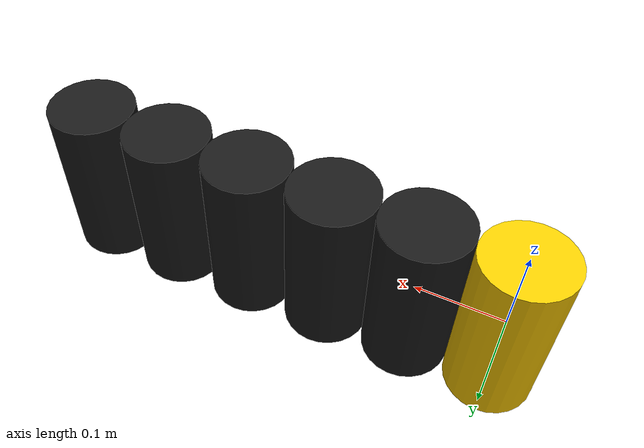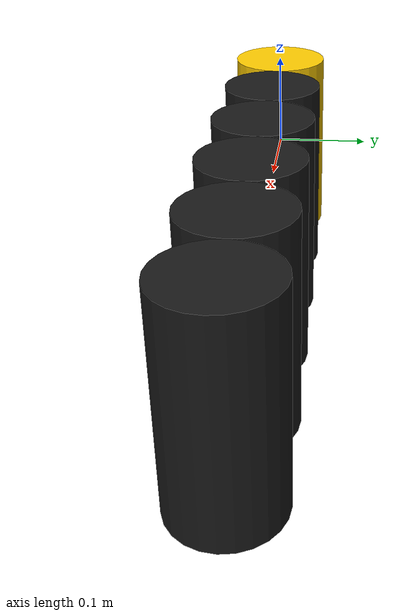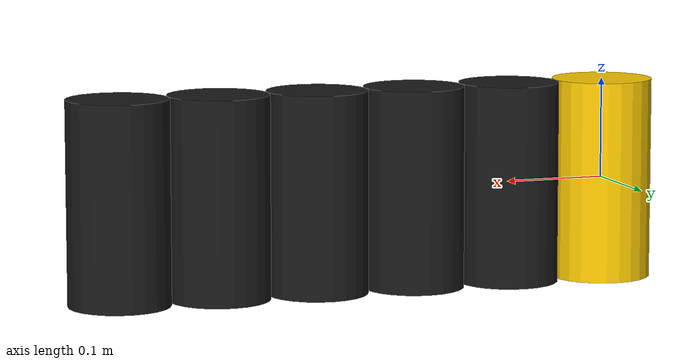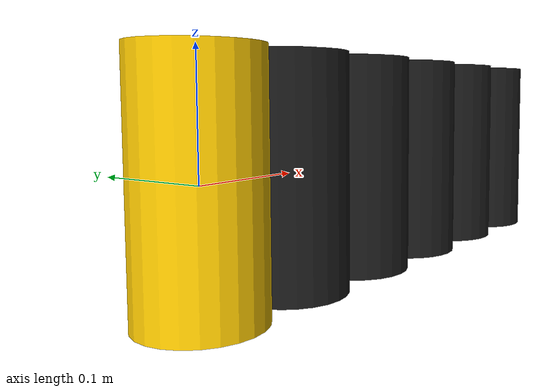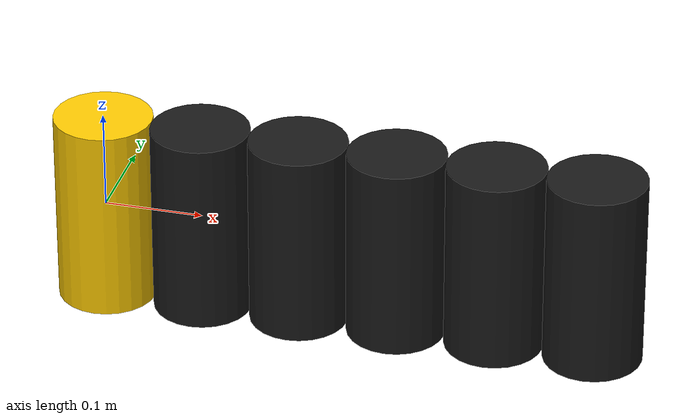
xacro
<?xml version="1.0"?>
<robot name="snakebot" xmlns:xacro="http://www.ros.org/wiki/xacro">

  <!-- Constants -->
  <xacro:property name="SEGMENT_LENGTH" value="0.2" />
  <xacro:property name="SEGMENT_RADIUS" value="0.05" />
  <xacro:property name="NUM_SEGMENTS" value="5" />

  <!-- Macro for creating a segment and connecting it to the previous link -->
  <xacro:macro name="snake_segment" params="name parent_link">
    <link name="${name}_link">
      <inertial>
        <mass value="0.5"/>
        <origin xyz="0 0 0" rpy="0 0 0"/>
        <inertia ixx="0.001" ixy="0.0" ixz="0.0" iyy="0.001" iyz="0.0" izz="0.001"/>
      </inertial>
      <visual>
        <geometry>
          <cylinder length="${SEGMENT_LENGTH}" radius="${SEGMENT_RADIUS}"/>
        </geometry>
        <material name="black">
          <color rgba="0.1 0.1 0.1 1.0"/>
        </material>
      </visual>
      <collision>
        <geometry>
          <cylinder length="${SEGMENT_LENGTH}" radius="${SEGMENT_RADIUS}"/>
        </geometry>
      </collision>
    </link>

    <!-- Joint connecting to the parent link (allows rotation around Y and Z axis) -->
    <joint name="${name}_joint" type="revolute">
      <parent link="${parent_link}"/>
      <child link="${name}_link"/>
      <origin xyz="${SEGMENT_LENGTH / 2} 0 0" rpy="0 0 0"/>
      <!-- Axis configuration for serpentine movement (yaw and pitch required) -->
      <axis xyz="0 1 0"/>
      <limit effort="10.0" velocity="1.0" lower="-1.57" upper="1.57"/>
    </joint>

    <gazebo reference="${name}_link">
      <material>Gazebo/Black</material>
    </gazebo>
  </xacro:macro>

  <!-- Initial Base Link -->
  <link name="base_link">
    <inertial>
      <mass value="0.5"/>
      <origin xyz="0 0 0" rpy="0 0 0"/>
      <inertia ixx="0.001" ixy="0.0" ixz="0.0" iyy="0.001" iyz="0.0" izz="0.001"/>
    </inertial>
    <visual>
      <geometry>
        <cylinder length="${SEGMENT_LENGTH}" radius="${SEGMENT_RADIUS}"/>
      </geometry>
      <material name="yellow">
        <color rgba="1.0 0.8 0.0 1.0"/>
      </material>
    </visual>
    <collision>
      <geometry>
        <cylinder length="${SEGMENT_LENGTH}" radius="${SEGMENT_RADIUS}"/>
      </geometry>
    </collision>
  </link>

  <!-- Create chain of segments -->
  <xacro:snake_segment name="segment_1" parent_link="base_link"/>
  <xacro:snake_segment name="segment_2" parent_link="segment_1_link"/>
  <xacro:snake_segment name="segment_3" parent_link="segment_2_link"/>
  <xacro:snake_segment name="segment_4" parent_link="segment_3_link"/>
  <xacro:snake_segment name="segment_5" parent_link="segment_4_link"/>

</robot>
